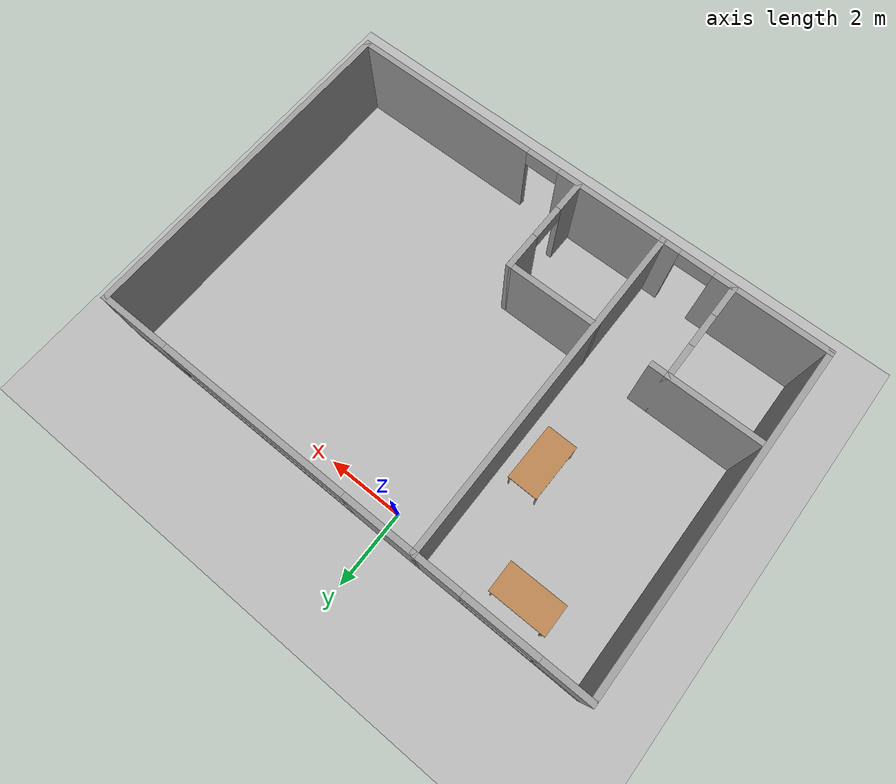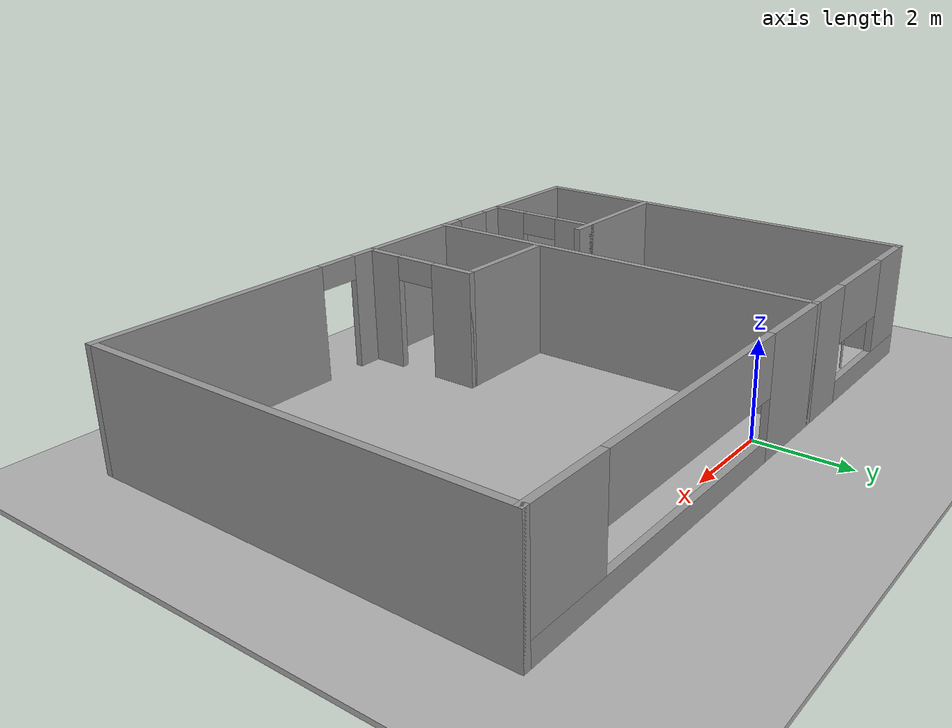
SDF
<sdf version="1.9">
 <world name="default">
  <gravity>0 0 -9.8</gravity>
  <magnetic_field>6e-06 2.3e-05 -4.2e-05</magnetic_field>
  <atmosphere type="adiabatic"/>
  <physics type="ode">
   <max_step_size>0.001</max_step_size>
   <real_time_factor>1</real_time_factor>
   <real_time_update_rate>1000</real_time_update_rate>
  </physics>
  <scene><ambient>0.4 0.4 0.4 1</ambient><background>0.7 0.7 0.7 1</background><shadows>true</shadows></scene>
  <model name="model">
   <pose>1.13895 -3.87606 0 0 -0 0</pose>
   <link name="Wall_10">
    <collision name="Wall_10_Collision">
     <geometry><box><size>9 0.15 2.5</size></box></geometry>
     <pose>0 0 1.25 0 -0 0</pose>
    </collision>
    <visual name="Wall_10_Visual">
     <pose>0 0 1.25 0 -0 0</pose>
     <geometry><box><size>9 0.15 2.5</size></box></geometry>
     <material>
      <script><uri>file://media/materials/scripts/gazebo.material</uri><name>Gazebo/Grey</name></script>
      <ambient>1 1 1 1</ambient>
     </material>
     <meta><layer>0</layer></meta>
    </visual>
    <pose>-6.59941 0 0 0 0 -1.5708</pose>
    <inertial>
     <mass>1</mass>
     <inertia><ixx>1</ixx><ixy>0</ixy><ixz>0</ixz><iyy>1</iyy><iyz>0</iyz><izz>1</izz></inertia>
    </inertial>
   </link>
   <link name="Wall_12">
    <pose>2.17559 4.425 0 0 -0 0</pose>
    <visual name="Wall_12_Visual_0">
     <pose>-3.53199 0 1.25 0 -0 0</pose>
     <geometry><box><size>1.93602 0.15 2.5</size></box></geometry>
     <material>
      <script><uri>file://media/materials/scripts/gazebo.material</uri><name>Gazebo/Grey</name></script>
      <ambient>1 1 1 1</ambient>
     </material>
     <meta><layer>0</layer></meta>
    </visual>
    <collision name="Wall_12_Collision_0">
     <geometry><box><size>1.93602 0.15 2.5</size></box></geometry>
     <pose>-3.53199 0 1.25 0 -0 0</pose>
    </collision>
    <visual name="Wall_12_Visual_1">
     <pose>0.96801 0 0.25 0 -0 0</pose>
     <geometry><box><size>7.06398 0.15 0.5</size></box></geometry>
     <material>
      <script><uri>file://media/materials/scripts/gazebo.material</uri><name>Gazebo/Grey</name></script>
      <ambient>1 1 1 1</ambient>
     </material>
     <meta><layer>0</layer></meta>
    </visual>
    <collision name="Wall_12_Collision_1">
     <geometry><box><size>7.06398 0.15 0.5</size></box></geometry>
     <pose>0.96801 0 0.25 0 -0 0</pose>
    </collision>
    <visual name="Wall_12_Visual_2">
     <pose>3.53678 0 1.5 0 -0 0</pose>
     <geometry><box><size>1.92644 0.15 2</size></box></geometry>
     <material>
      <script><uri>file://media/materials/scripts/gazebo.material</uri><name>Gazebo/Grey</name></script>
      <ambient>1 1 1 1</ambient>
     </material>
     <meta><layer>0</layer></meta>
    </visual>
    <collision name="Wall_12_Collision_2">
     <geometry><box><size>1.92644 0.15 2</size></box></geometry>
     <pose>3.53678 0 1.5 0 -0 0</pose>
    </collision>
    <visual name="Wall_12_Visual_3">
     <pose>0.004788 0 1.9 0 -0 0</pose>
     <geometry><box><size>5.13753 0.15 1.2</size></box></geometry>
     <material>
      <script><uri>file://media/materials/scripts/gazebo.material</uri><name>Gazebo/Grey</name></script>
      <ambient>1 1 1 1</ambient>
     </material>
     <meta><layer>0</layer></meta>
    </visual>
    <collision name="Wall_12_Collision_3">
     <geometry><box><size>5.13753 0.15 1.2</size></box></geometry>
     <pose>0.004788 0 1.9 0 -0 0</pose>
    </collision>
    <inertial>
     <mass>1</mass>
     <inertia><ixx>1</ixx><ixy>0</ixy><ixz>0</ixz><iyy>1</iyy><iyz>0</iyz><izz>1</izz></inertia>
    </inertial>
   </link>
   <link name="Wall_15">
    <collision name="Wall_15_Collision">
     <geometry><box><size>9 0.15 2.5</size></box></geometry>
     <pose>0 0 1.25 0 -0 0</pose>
    </collision>
    <visual name="Wall_15_Visual">
     <pose>0 0 1.25 0 -0 0</pose>
     <geometry><box><size>9 0.15 2.5</size></box></geometry>
     <material>
      <script><uri>file://media/materials/scripts/gazebo.material</uri><name>Gazebo/Grey</name></script>
      <ambient>1 1 1 1</ambient>
     </material>
     <meta><layer>0</layer></meta>
    </visual>
    <pose>6.60059 0 0 0 0 -1.5708</pose>
    <inertial>
     <mass>1</mass>
     <inertia><ixx>1</ixx><ixy>0</ixy><ixz>0</ixz><iyy>1</iyy><iyz>0</iyz><izz>1</izz></inertia>
    </inertial>
   </link>
   <link name="Wall_16">
    <pose>2.17559 -4.425 0 0 -0 3.14159</pose>
    <visual name="Wall_16_Visual_0">
     <pose>-1.94408 0 1.25 0 -0 0</pose>
     <geometry><box><size>5.11184 0.15 2.5</size></box></geometry>
     <material>
      <script><uri>file://media/materials/scripts/gazebo.material</uri><name>Gazebo/Grey</name></script>
      <ambient>1 1 1 1</ambient>
     </material>
     <meta><layer>0</layer></meta>
    </visual>
    <collision name="Wall_16_Collision_0">
     <geometry><box><size>5.11184 0.15 2.5</size></box></geometry>
     <pose>-1.94408 0 1.25 0 -0 0</pose>
    </collision>
    <visual name="Wall_16_Visual_1">
     <pose>3.00592 0 1.25 0 -0 0</pose>
     <geometry><box><size>2.98816 0.15 2.5</size></box></geometry>
     <material>
      <script><uri>file://media/materials/scripts/gazebo.material</uri><name>Gazebo/Grey</name></script>
      <ambient>1 1 1 1</ambient>
     </material>
     <meta><layer>0</layer></meta>
    </visual>
    <collision name="Wall_16_Collision_1">
     <geometry><box><size>2.98816 0.15 2.5</size></box></geometry>
     <pose>3.00592 0 1.25 0 -0 0</pose>
    </collision>
    <visual name="Wall_16_Visual_2">
     <pose>1.06184 0 2.25 0 -0 0</pose>
     <geometry><box><size>0.9 0.15 0.5</size></box></geometry>
     <material>
      <script><uri>file://media/materials/scripts/gazebo.material</uri><name>Gazebo/Grey</name></script>
      <ambient>1 1 1 1</ambient>
     </material>
     <meta><layer>0</layer></meta>
    </visual>
    <collision name="Wall_16_Collision_2">
     <geometry><box><size>0.9 0.15 0.5</size></box></geometry>
     <pose>1.06184 0 2.25 0 -0 0</pose>
    </collision>
    <inertial>
     <mass>1</mass>
     <inertia><ixx>1</ixx><ixy>0</ixy><ixz>0</ixz><iyy>1</iyy><iyz>0</iyz><izz>1</izz></inertia>
    </inertial>
   </link>
   <link name="Wall_21">
    <collision name="Wall_21_Collision">
     <geometry><box><size>3 0.15 2.5</size></box></geometry>
     <pose>0 0 1.25 0 -0 0</pose>
    </collision>
    <visual name="Wall_21_Visual">
     <pose>0 0 1.25 0 -0 0</pose>
     <geometry><box><size>3 0.15 2.5</size></box></geometry>
     <material>
      <script><uri>file://media/materials/scripts/gazebo.material</uri><name>Gazebo/Grey</name></script>
      <ambient>1 1 1 1</ambient>
     </material>
     <meta><layer>0</layer></meta>
    </visual>
    <pose>-5.17559 -1.79571 0 0 -0 0</pose>
    <inertial>
     <mass>1</mass>
     <inertia><ixx>1</ixx><ixy>0</ixy><ixz>0</ixz><iyy>1</iyy><iyz>0</iyz><izz>1</izz></inertia>
    </inertial>
   </link>
   <link name="Wall_23">
    <pose>-4.15059 -3.09571 0 0 0 -1.5708</pose>
    <visual name="Wall_23_Visual_0">
     <pose>-0.893054 0 1.25 0 -0 0</pose>
     <geometry><box><size>0.963892 0.15 2.5</size></box></geometry>
     <material>
      <script><uri>file://media/materials/scripts/gazebo.material</uri><name>Gazebo/Grey</name></script>
      <ambient>1 1 1 1</ambient>
     </material>
     <meta><layer>0</layer></meta>
    </visual>
    <collision name="Wall_23_Collision_0">
     <geometry><box><size>0.963892 0.15 2.5</size></box></geometry>
     <pose>-0.893054 0 1.25 0 -0 0</pose>
    </collision>
    <visual name="Wall_23_Visual_1">
     <pose>0.931946 0 1.25 0 -0 0</pose>
     <geometry><box><size>0.886108 0.15 2.5</size></box></geometry>
     <material>
      <script><uri>file://media/materials/scripts/gazebo.material</uri><name>Gazebo/Grey</name></script>
      <ambient>1 1 1 1</ambient>
     </material>
     <meta><layer>0</layer></meta>
    </visual>
    <collision name="Wall_23_Collision_1">
     <geometry><box><size>0.886108 0.15 2.5</size></box></geometry>
     <pose>0.931946 0 1.25 0 -0 0</pose>
    </collision>
    <visual name="Wall_23_Visual_2">
     <pose>0.038892 0 2.25 0 -0 0</pose>
     <geometry><box><size>0.9 0.15 0.5</size></box></geometry>
     <material>
      <script><uri>file://media/materials/scripts/gazebo.material</uri><name>Gazebo/Grey</name></script>
      <ambient>1 1 1 1</ambient>
     </material>
     <meta><layer>0</layer></meta>
    </visual>
    <collision name="Wall_23_Collision_2">
     <geometry><box><size>0.9 0.15 0.5</size></box></geometry>
     <pose>0.038892 0 2.25 0 -0 0</pose>
    </collision>
    <inertial>
     <mass>1</mass>
     <inertia><ixx>1</ixx><ixy>0</ixy><ixz>0</ixz><iyy>1</iyy><iyz>0</iyz><izz>1</izz></inertia>
    </inertial>
   </link>
   <link name="Wall_25">
    <collision name="Wall_25_Collision">
     <geometry><box><size>2.5 0.15 2.5</size></box></geometry>
     <pose>0 0 1.25 0 -0 0</pose>
    </collision>
    <visual name="Wall_25_Visual">
     <pose>0 0 1.25 0 -0 0</pose>
     <geometry><box><size>2.5 0.15 2.5</size></box></geometry>
     <material>
      <script><uri>file://media/materials/scripts/gazebo.material</uri><name>Gazebo/Grey</name></script>
      <ambient>1 1 1 1</ambient>
     </material>
     <meta><layer>0</layer></meta>
    </visual>
    <pose>-1.08363 -1.78553 0 0 -0 0</pose>
    <inertial>
     <mass>1</mass>
     <inertia><ixx>1</ixx><ixy>0</ixy><ixz>0</ixz><iyy>1</iyy><iyz>0</iyz><izz>1</izz></inertia>
    </inertial>
   </link>
   <link name="Wall_26">
    <pose>0.091367 -3.08553 0 0 0 -1.5708</pose>
    <visual name="Wall_26_Visual_0">
     <pose>-0.8748 0 1.25 0 -0 0</pose>
     <geometry><box><size>1.0004 0.15 2.5</size></box></geometry>
     <material>
      <script><uri>file://media/materials/scripts/gazebo.material</uri><name>Gazebo/Grey</name></script>
      <ambient>1 1 1 1</ambient>
     </material>
     <meta><layer>0</layer></meta>
    </visual>
    <collision name="Wall_26_Collision_0">
     <geometry><box><size>1.0004 0.15 2.5</size></box></geometry>
     <pose>-0.8748 0 1.25 0 -0 0</pose>
    </collision>
    <visual name="Wall_26_Visual_1">
     <pose>0.9502 0 1.25 0 -0 0</pose>
     <geometry><box><size>0.8496 0.15 2.5</size></box></geometry>
     <material>
      <script><uri>file://media/materials/scripts/gazebo.material</uri><name>Gazebo/Grey</name></script>
      <ambient>1 1 1 1</ambient>
     </material>
     <meta><layer>0</layer></meta>
    </visual>
    <collision name="Wall_26_Collision_1">
     <geometry><box><size>0.8496 0.15 2.5</size></box></geometry>
     <pose>0.9502 0 1.25 0 -0 0</pose>
    </collision>
    <visual name="Wall_26_Visual_2">
     <pose>0.0754 0 2.25 0 -0 0</pose>
     <geometry><box><size>0.9 0.15 0.5</size></box></geometry>
     <material>
      <script><uri>file://media/materials/scripts/gazebo.material</uri><name>Gazebo/Grey</name></script>
      <ambient>1 1 1 1</ambient>
     </material>
     <meta><layer>0</layer></meta>
    </visual>
    <collision name="Wall_26_Collision_2">
     <geometry><box><size>0.9 0.15 0.5</size></box></geometry>
     <pose>0.0754 0 2.25 0 -0 0</pose>
    </collision>
    <inertial>
     <mass>1</mass>
     <inertia><ixx>1</ixx><ixy>0</ixy><ixz>0</ixz><iyy>1</iyy><iyz>0</iyz><izz>1</izz></inertia>
    </inertial>
   </link>
   <link name="Wall_7">
    <pose>-4.42441 -4.425 0 0 -0 0</pose>
    <visual name="Wall_7_Visual_0">
     <pose>-0.726107 0 1.25 0 -0 0</pose>
     <geometry><box><size>3.04779 0.15 2.5</size></box></geometry>
     <material>
      <script><uri>file://media/materials/scripts/gazebo.material</uri><name>Gazebo/Grey</name></script>
      <ambient>1 1 1 1</ambient>
     </material>
     <meta><layer>0</layer></meta>
    </visual>
    <collision name="Wall_7_Collision_0">
     <geometry><box><size>3.04779 0.15 2.5</size></box></geometry>
     <pose>-0.726107 0 1.25 0 -0 0</pose>
    </collision>
    <visual name="Wall_7_Visual_1">
     <pose>1.97389 0 1.25 0 -0 0</pose>
     <geometry><box><size>0.552215 0.15 2.5</size></box></geometry>
     <material>
      <script><uri>file://media/materials/scripts/gazebo.material</uri><name>Gazebo/Grey</name></script>
      <ambient>1 1 1 1</ambient>
     </material>
     <meta><layer>0</layer></meta>
    </visual>
    <collision name="Wall_7_Collision_1">
     <geometry><box><size>0.552215 0.15 2.5</size></box></geometry>
     <pose>1.97389 0 1.25 0 -0 0</pose>
    </collision>
    <visual name="Wall_7_Visual_2">
     <pose>1.24778 0 2.25 0 -0 0</pose>
     <geometry><box><size>0.9 0.15 0.5</size></box></geometry>
     <material>
      <script><uri>file://media/materials/scripts/gazebo.material</uri><name>Gazebo/Grey</name></script>
      <ambient>1 1 1 1</ambient>
     </material>
     <meta><layer>0</layer></meta>
    </visual>
    <collision name="Wall_7_Collision_2">
     <geometry><box><size>0.9 0.15 0.5</size></box></geometry>
     <pose>1.24778 0 2.25 0 -0 0</pose>
    </collision>
    <inertial>
     <mass>1</mass>
     <inertia><ixx>1</ixx><ixy>0</ixy><ixz>0</ixz><iyy>1</iyy><iyz>0</iyz><izz>1</izz></inertia>
    </inertial>
   </link>
   <link name="Wall_8">
    <collision name="Wall_8_Collision">
     <geometry><box><size>9 0.15 2.5</size></box></geometry>
     <pose>0 0 1.25 0 -0 0</pose>
    </collision>
    <visual name="Wall_8_Visual">
     <pose>0 0 1.25 0 -0 0</pose>
     <geometry><box><size>9 0.15 2.5</size></box></geometry>
     <material>
      <script><uri>file://media/materials/scripts/gazebo.material</uri><name>Gazebo/Grey</name></script>
      <ambient>1 1 1 1</ambient>
     </material>
     <meta><layer>0</layer></meta>
    </visual>
    <pose>-2.24941 0 0 0 -0 1.5708</pose>
    <inertial>
     <mass>1</mass>
     <inertia><ixx>1</ixx><ixy>0</ixy><ixz>0</ixz><iyy>1</iyy><iyz>0</iyz><izz>1</izz></inertia>
    </inertial>
   </link>
   <link name="Wall_9">
    <pose>-4.42441 4.425 0 0 -0 3.14159</pose>
    <visual name="Wall_9_Visual_0">
     <pose>-1.60161 0 1.25 0 -0 0</pose>
     <geometry><box><size>1.29677 0.15 2.5</size></box></geometry>
     <material>
      <script><uri>file://media/materials/scripts/gazebo.material</uri><name>Gazebo/Grey</name></script>
      <ambient>1 1 1 1</ambient>
     </material>
     <meta><layer>0</layer></meta>
    </visual>
    <collision name="Wall_9_Collision_0">
     <geometry><box><size>1.29677 0.15 2.5</size></box></geometry>
     <pose>-1.60161 0 1.25 0 -0 0</pose>
    </collision>
    <visual name="Wall_9_Visual_1">
     <pose>0.648387 0 0.25 0 -0 0</pose>
     <geometry><box><size>3.20323 0.15 0.5</size></box></geometry>
     <material>
      <script><uri>file://media/materials/scripts/gazebo.material</uri><name>Gazebo/Grey</name></script>
      <ambient>1 1 1 1</ambient>
     </material>
     <meta><layer>0</layer></meta>
    </visual>
    <collision name="Wall_9_Collision_1">
     <geometry><box><size>3.20323 0.15 0.5</size></box></geometry>
     <pose>0.648387 0 0.25 0 -0 0</pose>
    </collision>
    <visual name="Wall_9_Visual_2">
     <pose>1.60807 0 1.5 0 -0 0</pose>
     <geometry><box><size>1.28386 0.15 2</size></box></geometry>
     <material>
      <script><uri>file://media/materials/scripts/gazebo.material</uri><name>Gazebo/Grey</name></script>
      <ambient>1 1 1 1</ambient>
     </material>
     <meta><layer>0</layer></meta>
    </visual>
    <collision name="Wall_9_Collision_2">
     <geometry><box><size>1.28386 0.15 2</size></box></geometry>
     <pose>1.60807 0 1.5 0 -0 0</pose>
    </collision>
    <visual name="Wall_9_Visual_3">
     <pose>0.006456 0 1.9 0 -0 0</pose>
     <geometry><box><size>1.91936 0.15 1.2</size></box></geometry>
     <material>
      <script><uri>file://media/materials/scripts/gazebo.material</uri><name>Gazebo/Grey</name></script>
      <ambient>1 1 1 1</ambient>
     </material>
     <meta><layer>0</layer></meta>
    </visual>
    <collision name="Wall_9_Collision_3">
     <geometry><box><size>1.91936 0.15 1.2</size></box></geometry>
     <pose>0.006456 0 1.9 0 -0 0</pose>
    </collision>
    <inertial>
     <mass>1</mass>
     <inertia><ixx>1</ixx><ixy>0</ixy><ixz>0</ixz><iyy>1</iyy><iyz>0</iyz><izz>1</izz></inertia>
    </inertial>
   </link>
   <static>true</static>
  </model>
  <model name="ground_plane">
   <static>true</static>
   <link name="link">
    <collision name="collision">
     <geometry><plane><normal>0 0 1</normal><size>100 100</size></plane></geometry>
     <surface><friction><ode><mu>100</mu><mu2>50</mu2></ode></friction></surface>
    </collision>
    <visual name="visual">
     <cast_shadows>false</cast_shadows>
     <geometry><plane><normal>0 0 1</normal><size>100 100</size></plane></geometry>
     <material>
      <ambient>0.3 0.3 0.3 1</ambient>
      <diffuse>0.7 0.7 0.7 1</diffuse>
      <specular>0.01 0.01 0.01 1</specular>
     </material>
    </visual>
    <inertial>
     <mass>1</mass>
     <inertia><ixx>1</ixx><ixy>0</ixy><ixz>0</ixz><iyy>1</iyy><iyz>0</iyz><izz>1</izz></inertia>
    </inertial>
   </link>
   <pose>3.60765 1.09856 0 0 -0 0</pose>
  </model>
  <model name="Table">
   <static>true</static>
   <link name="link">
    <collision name="surface">
     <pose>0 0 1.0 0 0 0</pose>
     <geometry><box><size>1.5 0.8 0.03</size></box></geometry>
     <surface><friction><ode><mu>0.59999999999999998</mu><mu2>0.59999999999999998</mu2></ode></friction></surface>
    </collision>
    <visual name="visual1">
     <pose>0 0 1.0 0 0 0</pose>
     <geometry><box><size>1.5 0.8 0.03</size></box></geometry>
     <material>
      <diffuse>1 1 1 1</diffuse>
      <script><uri>file://media/materials/scripts/gazebo.material</uri><name>Gazebo/Wood</name></script>
      <pbr>
       <metal>
        <albedo_map>https://fuel.gazebosim.org/1.0/openrobotics/models/table/4/files/Table_Diffuse.jpg</albedo_map>
       </metal>
      </pbr>
     </material>
    </visual>
    <collision name="front_left_leg">
     <pose>0.68 0.38 0.5 0 0 0</pose>
     <geometry><cylinder><radius>0.02</radius><length>1</length></cylinder></geometry>
    </collision>
    <visual name="front_left_leg">
     <pose>0.68 0.38 0.5 0 0 0</pose>
     <geometry><cylinder><radius>0.02</radius><length>1</length></cylinder></geometry>
     <material>
      <diffuse>0.5 0.5 0.5 1</diffuse>
      <script><uri>file://media/materials/scripts/gazebo.material</uri><name>Gazebo/Grey</name></script>
     </material>
    </visual>
    <collision name="front_right_leg">
     <pose>0.68 -0.38 0.5 0 0 0</pose>
     <geometry><cylinder><radius>0.02</radius><length>1</length></cylinder></geometry>
    </collision>
    <visual name="front_right_leg">
     <pose>0.68 -0.38 0.5 0 0 0</pose>
     <geometry><cylinder><radius>0.02</radius><length>1</length></cylinder></geometry>
     <material>
      <diffuse>0.5 0.5 0.5 1</diffuse>
      <script><uri>file://media/materials/scripts/gazebo.material</uri><name>Gazebo/Grey</name></script>
     </material>
    </visual>
    <collision name="back_right_leg">
     <pose>-0.68 -0.38 0.5 0 0 0</pose>
     <geometry><cylinder><radius>0.02</radius><length>1</length></cylinder></geometry>
    </collision>
    <visual name="back_right_leg">
     <pose>-0.68 -0.38 0.5 0 0 0</pose>
     <geometry><cylinder><radius>0.02</radius><length>1</length></cylinder></geometry>
     <material>
      <diffuse>0.5 0.5 0.5 1</diffuse>
      <script><uri>file://media/materials/scripts/gazebo.material</uri><name>Gazebo/Grey</name></script>
     </material>
    </visual>
    <collision name="back_left_leg">
     <pose>-0.68 0.38 0.5 0 0 0</pose>
     <geometry><cylinder><radius>0.02</radius><length>1</length></cylinder></geometry>
    </collision>
    <visual name="back_left_leg">
     <pose>-0.68 0.38 0.5 0 0 0</pose>
     <geometry><cylinder><radius>0.02</radius><length>1</length></cylinder></geometry>
     <material>
      <diffuse>0.5 0.5 0.5 1</diffuse>
      <script><uri>file://media/materials/scripts/gazebo.material</uri><name>Gazebo/Grey</name></script>
     </material>
    </visual>
    <inertial>
     <mass>1</mass>
     <inertia><ixx>1</ixx><ixy>0</ixy><ixz>0</ixz><iyy>1</iyy><iyz>0</iyz><izz>1</izz></inertia>
    </inertial>
   </link>
   <pose>-3.42973 -0.308767 0 0 -0 0</pose>
  </model>
  <model name="Table_1">
   <static>true</static>
   <link name="link">
    <collision name="surface">
     <pose>0 0 1.0 0 0 0</pose>
     <geometry><box><size>1.5 0.8 0.03</size></box></geometry>
     <surface><friction><ode><mu>0.59999999999999998</mu><mu2>0.59999999999999998</mu2></ode></friction></surface>
    </collision>
    <visual name="visual1">
     <pose>0 0 1.0 0 0 0</pose>
     <geometry><box><size>1.5 0.8 0.03</size></box></geometry>
     <material>
      <diffuse>1 1 1 1</diffuse>
      <script><uri>file://media/materials/scripts/gazebo.material</uri><name>Gazebo/Wood</name></script>
      <pbr>
       <metal>
        <albedo_map>https://fuel.gazebosim.org/1.0/openrobotics/models/table/4/files/Table_Diffuse.jpg</albedo_map>
       </metal>
      </pbr>
     </material>
    </visual>
    <collision name="front_left_leg">
     <pose>0.68 0.38 0.5 0 0 0</pose>
     <geometry><cylinder><radius>0.02</radius><length>1</length></cylinder></geometry>
    </collision>
    <visual name="front_left_leg">
     <pose>0.68 0.38 0.5 0 0 0</pose>
     <geometry><cylinder><radius>0.02</radius><length>1</length></cylinder></geometry>
     <material>
      <diffuse>0.5 0.5 0.5 1</diffuse>
      <script><uri>file://media/materials/scripts/gazebo.material</uri><name>Gazebo/Grey</name></script>
     </material>
    </visual>
    <collision name="front_right_leg">
     <pose>0.68 -0.38 0.5 0 0 0</pose>
     <geometry><cylinder><radius>0.02</radius><length>1</length></cylinder></geometry>
    </collision>
    <visual name="front_right_leg">
     <pose>0.68 -0.38 0.5 0 0 0</pose>
     <geometry><cylinder><radius>0.02</radius><length>1</length></cylinder></geometry>
     <material>
      <diffuse>0.5 0.5 0.5 1</diffuse>
      <script><uri>file://media/materials/scripts/gazebo.material</uri><name>Gazebo/Grey</name></script>
     </material>
    </visual>
    <collision name="back_right_leg">
     <pose>-0.68 -0.38 0.5 0 0 0</pose>
     <geometry><cylinder><radius>0.02</radius><length>1</length></cylinder></geometry>
    </collision>
    <visual name="back_right_leg">
     <pose>-0.68 -0.38 0.5 0 0 0</pose>
     <geometry><cylinder><radius>0.02</radius><length>1</length></cylinder></geometry>
     <material>
      <diffuse>0.5 0.5 0.5 1</diffuse>
      <script><uri>file://media/materials/scripts/gazebo.material</uri><name>Gazebo/Grey</name></script>
     </material>
    </visual>
    <collision name="back_left_leg">
     <pose>-0.68 0.38 0.5 0 0 0</pose>
     <geometry><cylinder><radius>0.02</radius><length>1</length></cylinder></geometry>
    </collision>
    <visual name="back_left_leg">
     <pose>-0.68 0.38 0.5 0 0 0</pose>
     <geometry><cylinder><radius>0.02</radius><length>1</length></cylinder></geometry>
     <material>
      <diffuse>0.5 0.5 0.5 1</diffuse>
      <script><uri>file://media/materials/scripts/gazebo.material</uri><name>Gazebo/Grey</name></script>
     </material>
    </visual>
   </link>
   <pose>-1.93606 -2.84142 0 0 -0 1.55826</pose>
  </model>
  <model name="ground_plane_1">
   <static>true</static>
   <link name="link">
    <collision name="collision">
     <geometry><plane><normal>0 0 1</normal><size>100 100</size></plane></geometry>
     <surface><friction><ode><mu>100</mu><mu2>50</mu2></ode></friction></surface>
    </collision>
    <visual name="visual">
     <cast_shadows>false</cast_shadows>
     <geometry><plane><normal>0 0 1</normal><size>100 100</size></plane></geometry>
     <material>
      <ambient>0.3 0.3 0.3 1</ambient>
      <diffuse>0.7 0.7 0.7 1</diffuse>
      <specular>0.01 0.01 0.01 1</specular>
     </material>
    </visual>
   </link>
   <pose>-0.587253 -4.81575 0 0 -0 0</pose>
  </model>
 </world>
</sdf>
